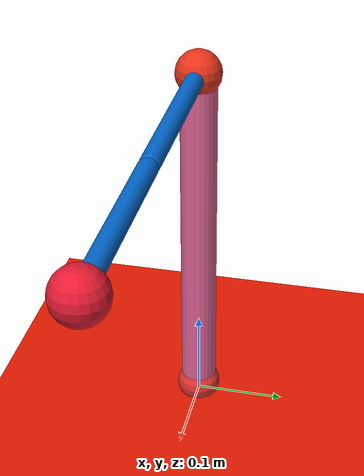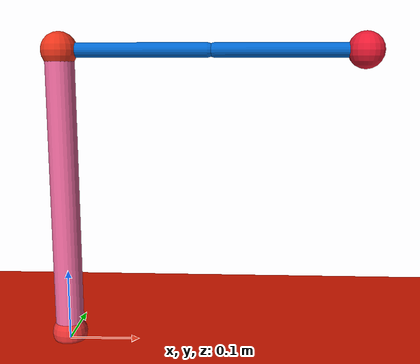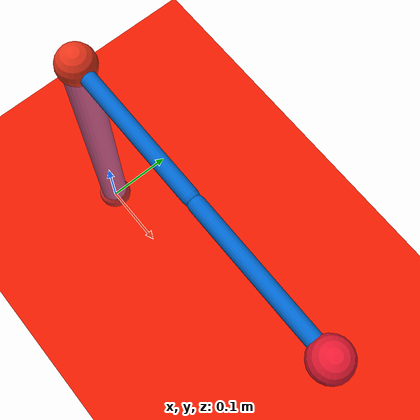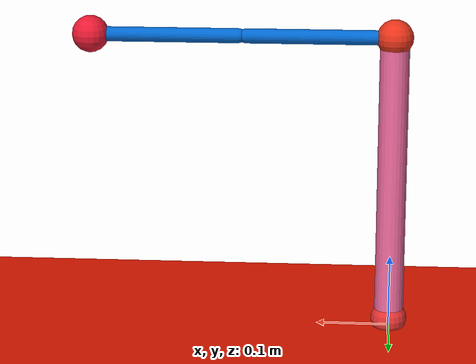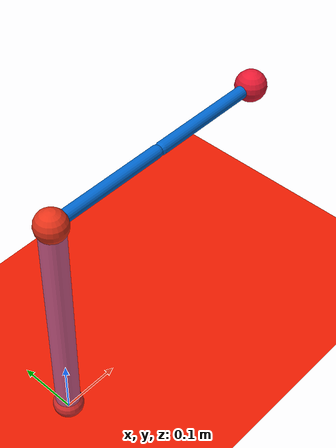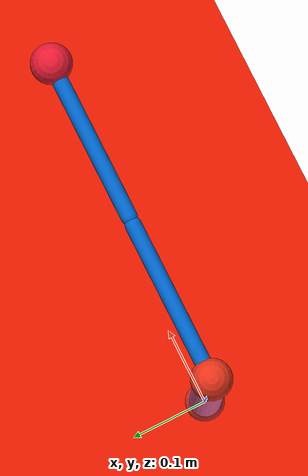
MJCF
<mujoco model="Arm">
	<compiler angle="radian" inertiafromgeom="true"/>
	<default>
		<joint armature="1" damping="1" limited="true"/>
		<geom contype="0" conaffinity="0" friction="1 0.1 0.1" rgba="0.7 0.7 0 1"/>
	</default>

	<option integrator="RK4" iterations="50" solver="PGS" timestep="0.003">
	</option>
	<worldbody>
		<!-- Arena -->
		<geom conaffinity="0" contype="0" name="ground" pos="0 0 0" rgba="0.9 0.1 0.0 1" size="1 1 10" type="plane"/>

		<!-- Base -->
		<geom conaffinity="0" contype="0" fromto="0 0 0 0 0 0.4" name="base" rgba="0.9 0.4 0.6 1" size=".02" type="cylinder"/>

		<!-- Arm -->
		<body name="robot_arm" pos="0 0 0.41">
			<geom name="robot_shoulder" pos="0 0 0" rgba="0.9 0.2 0.1 0.9" size=".025" type="sphere"/>
			<joint axis="1 0 0" limited="false" name="robot_shoulder_joint_x" pos="0 0 0" type="hinge"/>
			<joint axis="0 1 0" limited="false" name="robot_shoulder_joint_y" pos="0 0 0" type="hinge"/>
			<joint axis="0 0 1" limited="false" name="robot_shoulder_joint_z" pos="0 0 0" type="hinge"/>
			<geom fromto="0 0 0 0.2 0 0" name="robot_arm0" rgba="0.0 0.4 0.8 0.9" size=".01" type="capsule"/>

			<!-- Lower Arm -->
			<body name="robot_arm1" pos="0.21 0 0">
				<joint axis="1 0 0" limited="false" name="robot_elbow_joint_x" pos="0 0 0" type="hinge"/>
				<joint axis="0 1 0" limited="false" name="robot_elbow_joint_y" pos="0 0 0" type="hinge"/>
				<joint axis="0 0 1" limited="false" name="robot_elbow_joint_z" pos="0 0 0" type="hinge"/>
				<geom fromto="0 0 0 0.2 0 0" name="robot_arm1" rgba="0.0 0.4 0.8 0.9" size=".01" type="capsule"/>

				<!-- Hand -->
				<body name="robot_hand" pos="0.2 0 0">
					<geom contype="0" conaffinity="0" pos="0 0 0" name="robot_hand" rgba="0.9 0.1 0.2 0.9" size=".025" type="sphere"/>
				</body>
			</body>
		</body>
		<!-- Target -->
		<body name="target" pos="0 0 .01">
			<joint armature="0" axis="1 0 0" damping="0" limited="true" name="target_x" pos="0 0 0" range="-.27 .27" stiffness="0" type="slide"/>
			<joint armature="0" axis="0 1 0" damping="0" limited="true" name="target_y" pos="0 0 0" range="-.27 .27" stiffness="0" type="slide"/>
			<joint armature="0" axis="0 0 1" damping="0" limited="true" name="target_z" pos="0 0 0" range="-.27 .27" stiffness="0" type="slide"/>
			<geom conaffinity="0" contype="0" name="target" pos="0 0 0" rgba="0.9 0.2 0.2 1" size=".025" type="sphere" mass="0"/>
		</body>
	</worldbody>
	<actuator>
		<motor ctrllimited="true" ctrlrange="-1.0 1.0" gear="200.0" joint="shoulder_joint_x"/>
		<motor ctrllimited="true" ctrlrange="-1.0 1.0" gear="200.0" joint="shoulder_joint_y"/>
		<motor ctrllimited="true" ctrlrange="-1.0 1.0" gear="200.0" joint="shoulder_joint_z"/>
		<motor ctrllimited="true" ctrlrange="-1.0 1.0" gear="200.0" joint="elbow_joint_x"/>
		<motor ctrllimited="true" ctrlrange="-1.0 1.0" gear="200.0" joint="elbow_joint_y"/>
		<motor ctrllimited="true" ctrlrange="-1.0 1.0" gear="200.0" joint="elbow_joint_z"/>
	</actuator>
</mujoco>
